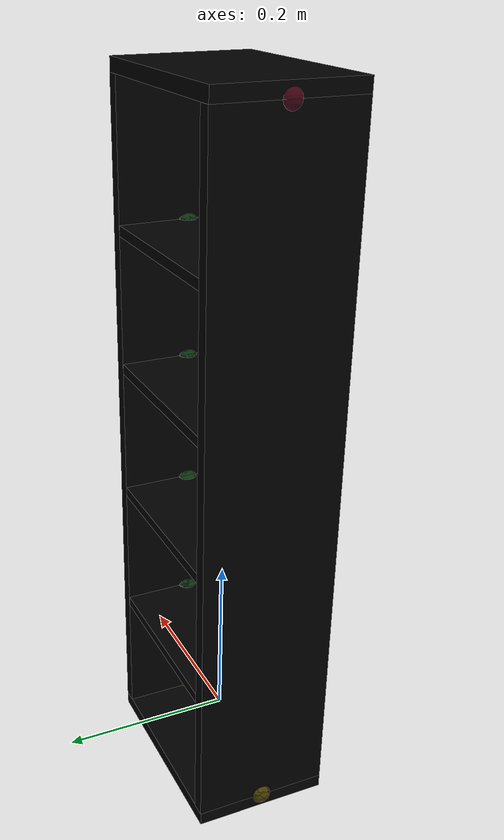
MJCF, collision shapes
<mujoco model="bookcase_expedit_0385">
  <custom>
    <numeric data="0.610909 0.185574 0.007996 0.0 -0.701463 0.712706 0.0" name="0_part0_initpos" />
    <numeric data="0.058502 0.312085 0.007896 0.707107 -1e-06 0.707107 1e-06" name="7_part7_initpos" />
    <numeric data="0.048989 0.082944 0.008098 0.000233 -0.707107 -0.000233 -0.707107" name="6_part6_initpos" />
    <numeric data="-0.494272 0.204526 0.008098 0.707633 0.0 -0.0 0.70658" name="5_part5_initpos" />
    <numeric data="-0.067446 -0.13918 0.006066 0.999964 -0.0 -0.0 -0.008531" name="4_part4_initpos" />
    <numeric data="0.484878 -0.138269 0.006169 0.999106 0.0 -0.0 0.042283" name="3_part3_initpos" />
    <numeric data="-0.336847 -0.116742 0.006066 0.99999 -0.0 -0.0 -0.004365" name="2_part2_initpos" />
    <numeric data="0.222327 -0.12981 0.006066 0.999952 0.0 0.0 -0.009838" name="1_part1_initpos" />
  </custom>
  <asset>
    <mesh file="bookcase_expedit_0385/0.stl" name="part0" scale="0.00064 0.00064 0.00064" />
    <mesh file="bookcase_expedit_0385/7.stl" name="part7" scale="0.00064 0.00064 0.00064" />
    <mesh file="bookcase_expedit_0385/6.stl" name="part6" scale="0.00064 0.00064 0.00064" />
    <mesh file="bookcase_expedit_0385/5.stl" name="part5" scale="0.00064 0.00064 0.00064" />
    <mesh file="bookcase_expedit_0385/4.stl" name="part4" scale="0.00064 0.00064 0.00064" />
    <mesh file="bookcase_expedit_0385/3.stl" name="part3" scale="0.00064 0.00064 0.00064" />
    <mesh file="bookcase_expedit_0385/2.stl" name="part2" scale="0.00064 0.00064 0.00064" />
    <mesh file="bookcase_expedit_0385/1.stl" name="part1" scale="0.00064 0.00064 0.00064" />
  </asset>
  <equality>
    <weld active="false" body1="0_part0" body2="6_part6" solimp="1 1 0.5" solref="0.01 0.3" />
    <weld active="false" body1="0_part0" body2="7_part7" solimp="1 1 0.5" solref="0.01 0.3" />
    <weld active="false" body1="6_part6" body2="5_part5" solimp="1 1 0.5" solref="0.01 0.3" />
    <weld active="false" body1="7_part7" body2="5_part5" solimp="1 1 0.5" solref="0.01 0.3" />
    <weld active="false" body1="6_part6" body2="1_part1" solimp="1 1 0.5" solref="0.01 0.3" />
    <weld active="false" body1="6_part6" body2="2_part2" solimp="1 1 0.5" solref="0.01 0.3" />
    <weld active="false" body1="6_part6" body2="3_part3" solimp="1 1 0.5" solref="0.01 0.3" />
    <weld active="false" body1="6_part6" body2="4_part4" solimp="1 1 0.5" solref="0.01 0.3" />
    <weld active="false" body1="7_part7" body2="1_part1" solimp="1 1 0.5" solref="0.01 0.3" />
    <weld active="false" body1="7_part7" body2="2_part2" solimp="1 1 0.5" solref="0.01 0.3" />
    <weld active="false" body1="7_part7" body2="3_part3" solimp="1 1 0.5" solref="0.01 0.3" />
    <weld active="false" body1="7_part7" body2="4_part4" solimp="1 1 0.5" solref="0.01 0.3" />
  </equality>
  <worldbody>
    <body name="0_part0" pos="0.0 -1.1520000000000002e-09 0.768000000064" quat="1 0 0 0">
      <geom conaffinity="0" contype="0" density="0" mesh="part0" name="0_part0_mesh" pos="0.0 0.0 0.0" rgba="0.82 0.71 0.55 1" type="mesh" />
      <site name="0_part0_horizontal_radius_site" pos="0.0 -1.1520000000000002e-09 6.400000000000001e-11" quat="1 0 0 0" rgba="0 0 0 0" size="0.0128" />
      <site name="0_part0_top_site" pos="0.0 -1.1520000000000002e-09 0.008128015744000001" quat="1 0 0 0" rgba="0 0 0 0" size="0.0128" />
      <site name="0_part0_bottom_site" pos="0.0 -1.1520000000000002e-09 -0.008128015616000002" quat="1 0 0 0" rgba="0 0 0 0" size="0.0128" />
      <site name="0_part0_corner_site8" pos="-0.12192000000000001 0.08128000256000001 0.008128015744000001" quat="1 0 0 0" rgba="0 0 0 0" size="0.0128" />
      <site name="0_part0_corner_site7" pos="0.12192000000000001 0.08128000256000001 0.008128015744000001" quat="1 0 0 0" rgba="0 0 0 0" size="0.0128" />
      <site name="0_part0_corner_site6" pos="0.12192000000000001 -0.08128000486400003 0.008128015744000001" quat="1 0 0 0" rgba="0 0 0 0" size="0.0128" />
      <site name="0_part0_corner_site5" pos="-0.12192000000000001 -0.08128000486400003 0.008128015744000001" quat="1 0 0 0" rgba="0 0 0 0" size="0.0128" />
      <site name="0_part0_corner_site4" pos="-0.12192000000000001 0.08128000256000001 -0.008128015616000002" quat="1 0 0 0" rgba="0 0 0 0" size="0.0128" />
      <site name="0_part0_corner_site3" pos="0.12192000000000001 0.08128000256000001 -0.008128015616000002" quat="1 0 0 0" rgba="0 0 0 0" size="0.0128" />
      <site name="0_part0_corner_site2" pos="0.12192000000000001 -0.08128000486400003 -0.008128015616000002" quat="1 0 0 0" rgba="0 0 0 0" size="0.0128" />
      <site name="0_part0_corner_site1" pos="-0.12192000000000001 -0.08128000486400003 -0.008128015616000002" quat="1 0 0 0" rgba="0 0 0 0" size="0.0128" />
      <site name="toppane-sidepane,0,180,conn_site2" pos="0.11552000000000001 0.0 -0.0081280128" quat="1 0 0 0" rgba="0.9019 0.0980 0.2941 0.3" size="0.0128" />
      <site name="toppane-sidepane,0,180,conn_site1" pos="-0.11443200000000003 0.0 -0.0081280128" quat="1 0 0 0" rgba="0.9019 0.0980 0.2941 0.3" size="0.0128" />
      <geom density="50" name="noviz_collision_0_part0_0" pos="0.0 6.400000000000001e-09 -5.072000000000001e-05" quat="1 0 0 0" rgba="0 0 0 0" size="0.12192000000000001 0.08128000000000002 0.008077292800000002" solref="0.001 1" type="box" />
    </body>
    <body name="7_part7" pos="0.11379199955200002 -1.1520000000000002e-09 0.35347198822400006" quat="1 0 0 0">
      <geom conaffinity="0" contype="0" density="0" mesh="part7" name="7_part7_mesh" pos="0.0 0.0 0.0" rgba="0.82 0.71 0.55 1" type="mesh" />
      <site name="7_part7_horizontal_radius_site" pos="-6.400000000000001e-11 -1.1520000000000002e-09 -3.84e-09" quat="1 0 0 0" rgba="0 0 0 0" size="0.0128" />
      <site name="7_part7_top_site" pos="-6.400000000000001e-11 -1.1520000000000002e-09 0.40640000000000004" quat="1 0 0 0" rgba="0 0 0 0" size="0.0128" />
      <site name="7_part7_bottom_site" pos="-6.400000000000001e-11 -1.1520000000000002e-09 -0.40640000768000006" quat="1 0 0 0" rgba="0 0 0 0" size="0.0128" />
      <site name="7_part7_corner_site8" pos="-0.008128000512 0.08128000256000001 0.40640000000000004" quat="1 0 0 0" rgba="0 0 0 0" size="0.0128" />
      <site name="7_part7_corner_site7" pos="0.00812800032 0.08128000256000001 0.40640000000000004" quat="1 0 0 0" rgba="0 0 0 0" size="0.0128" />
      <site name="7_part7_corner_site6" pos="0.00812800032 -0.08128000486400003 0.40640000000000004" quat="1 0 0 0" rgba="0 0 0 0" size="0.0128" />
      <site name="7_part7_corner_site5" pos="-0.008128000512 -0.08128000486400003 0.40640000000000004" quat="1 0 0 0" rgba="0 0 0 0" size="0.0128" />
      <site name="7_part7_corner_site4" pos="-0.008128000512 0.08128000256000001 -0.40640000768000006" quat="1 0 0 0" rgba="0 0 0 0" size="0.0128" />
      <site name="7_part7_corner_site3" pos="0.00812800032 0.08128000256000001 -0.40640000768000006" quat="1 0 0 0" rgba="0 0 0 0" size="0.0128" />
      <site name="7_part7_corner_site2" pos="0.00812800032 -0.08128000486400003 -0.40640000768000006" quat="1 0 0 0" rgba="0 0 0 0" size="0.0128" />
      <site name="7_part7_corner_site1" pos="-0.008128000512 -0.08128000486400003 -0.40640000768000006" quat="1 0 0 0" rgba="0 0 0 0" size="0.0128" />
      <site name="sidepane-horpane,0,180,conn_site8" pos="-0.007552000000000002 0.0 0.24300800000000003" quat="0.7071067 0 0.7071068 0" rgba="0.2352 0.7058 0.2941 0.3" size="0.0128" />
      <site name="sidepane-horpane,0,180,conn_site7" pos="-0.008192000000000001 0.0 0.08108800000000001" quat="0.7071067 0 0.7071068 0" rgba="0.2352 0.7058 0.2941 0.3" size="0.0128" />
      <site name="sidepane-horpane,0,180,conn_site6" pos="-0.008192000000000001 0.0 -0.08083200000000001" quat="0.7071067 0 0.7071068 0" rgba="0.2352 0.7058 0.2941 0.3" size="0.0128" />
      <site name="sidepane-horpane,0,180,conn_site5" pos="-0.007552000000000002 0.0 -0.24339200000000005" quat="0.7071067 0 0.7071068 0" rgba="0.2352 0.7058 0.2941 0.3" size="0.0128" />
      <site name="sidepane-botpane,0,180,conn_site2" pos="0.0015359936 0.0 -0.406400064" quat="0 1 0 0" rgba="1.0 0.8823 0.0980 0.3" size="0.0128" />
      <site name="sidepane-toppane,0,180,conn_site2" pos="0.0017280000000000002 0.0 0.40640000000000004" quat="1 0 0 0" rgba="0.9019 0.0980 0.2941 0.3" size="0.0128" />
      <geom density="50" name="noviz_collision_7_part7_0" pos="-0.00010078080000000001 0.00021462400000000004 0.0" quat="1 0 0 0" rgba="0 0 0 0" size="0.008027219200000001 0.08149465600000001 0.406400064" solref="0.001 1" type="box" />
    </body>
    <body name="6_part6" pos="-0.11379199942400003 -1.1520000000000002e-09 0.35347198822400006" quat="1 0 0 0">
      <geom conaffinity="0" contype="0" density="0" mesh="part6" name="6_part6_mesh" pos="0.0 0.0 0.0" rgba="0.82 0.71 0.55 1" type="mesh" />
      <site name="6_part6_horizontal_radius_site" pos="-6.400000000000001e-11 -1.1520000000000002e-09 -3.84e-09" quat="1 0 0 0" rgba="0 0 0 0" size="0.0128" />
      <site name="6_part6_top_site" pos="-6.400000000000001e-11 -1.1520000000000002e-09 0.40640000000000004" quat="1 0 0 0" rgba="0 0 0 0" size="0.0128" />
      <site name="6_part6_bottom_site" pos="-6.400000000000001e-11 -1.1520000000000002e-09 -0.40640000768000006" quat="1 0 0 0" rgba="0 0 0 0" size="0.0128" />
      <site name="6_part6_corner_site8" pos="-0.00812800064 0.08128000256000001 0.40640000000000004" quat="1 0 0 0" rgba="0 0 0 0" size="0.0128" />
      <site name="6_part6_corner_site7" pos="0.008128000512 0.08128000256000001 0.40640000000000004" quat="1 0 0 0" rgba="0 0 0 0" size="0.0128" />
      <site name="6_part6_corner_site6" pos="0.008128000512 -0.08128000486400003 0.40640000000000004" quat="1 0 0 0" rgba="0 0 0 0" size="0.0128" />
      <site name="6_part6_corner_site5" pos="-0.00812800064 -0.08128000486400003 0.40640000000000004" quat="1 0 0 0" rgba="0 0 0 0" size="0.0128" />
      <site name="6_part6_corner_site4" pos="-0.00812800064 0.08128000256000001 -0.40640000768000006" quat="1 0 0 0" rgba="0 0 0 0" size="0.0128" />
      <site name="6_part6_corner_site3" pos="0.008128000512 0.08128000256000001 -0.40640000768000006" quat="1 0 0 0" rgba="0 0 0 0" size="0.0128" />
      <site name="6_part6_corner_site2" pos="0.008128000512 -0.08128000486400003 -0.40640000768000006" quat="1 0 0 0" rgba="0 0 0 0" size="0.0128" />
      <site name="6_part6_corner_site1" pos="-0.00812800064 -0.08128000486400003 -0.40640000768000006" quat="1 0 0 0" rgba="0 0 0 0" size="0.0128" />
      <site name="sidepane-horpane,0,180,conn_site4" pos="0.008832000000000001 0.0 0.243648" quat="0.7071067 0 -0.7071068 0" rgba="0.2352 0.7058 0.2941 0.3" size="0.0128" />
      <site name="sidepane-horpane,0,180,conn_site3" pos="0.008192000000000001 0.0 0.07852800000000001" quat="0.7071067 0 -0.7071068 0" rgba="0.2352 0.7058 0.2941 0.3" size="0.0128" />
      <site name="sidepane-horpane,0,180,conn_site2" pos="0.008192000000000001 0.0 -0.08275200000000003" quat="0.7071067 0 -0.7071068 0" rgba="0.2352 0.7058 0.2941 0.3" size="0.0128" />
      <site name="sidepane-horpane,0,180,conn_site1" pos="0.007552000000000002 0.0 -0.24467200000000006" quat="0.7071067 0 -0.7071068 0" rgba="0.2352 0.7058 0.2941 0.3" size="0.0128" />
      <site name="sidepane-botpane,0,180,conn_site1" pos="-0.0028159936000000003 0.0 -0.406400064" quat="0 1 0 0" rgba="1.0 0.8823 0.0980 0.3" size="0.0128" />
      <site name="sidepane-toppane,0,180,conn_site1" pos="-0.00064 0.0 0.40640000000000004" quat="1 0 0 0" rgba="0.9019 0.0980 0.2941 0.3" size="0.0128" />
      <geom density="50" name="noviz_collision_6_part6_0" pos="0.00010078080000000001 0.00021462400000000004 0.0" quat="1 0 0 0" rgba="0 0 0 0" size="0.0082287808 0.08149465600000001 0.406400064" solref="0.001 1" type="box" />
    </body>
    <body name="5_part5" pos="0.0 -1.1520000000000002e-09 -0.06105601561599994" quat="1 0 0 0">
      <geom conaffinity="0" contype="0" density="0" mesh="part5" name="5_part5_mesh" pos="0.0 0.0 0.0" rgba="0.82 0.71 0.55 1" type="mesh" />
      <site name="5_part5_horizontal_radius_site" pos="0.0 -1.1520000000000002e-09 0.0" quat="1 0 0 0" rgba="0 0 0 0" size="0.0128" />
      <site name="5_part5_top_site" pos="0.0 -1.1520000000000002e-09 0.008128000000000002" quat="1 0 0 0" rgba="0 0 0 0" size="0.0128" />
      <site name="5_part5_bottom_site" pos="0.0 -1.1520000000000002e-09 -0.008128000000000002" quat="1 0 0 0" rgba="0 0 0 0" size="0.0128" />
      <site name="5_part5_corner_site8" pos="-0.12192000000000001 0.08128000256000001 0.008128000000000002" quat="1 0 0 0" rgba="0 0 0 0" size="0.0128" />
      <site name="5_part5_corner_site7" pos="0.12192000000000001 0.08128000256000001 0.008128000000000002" quat="1 0 0 0" rgba="0 0 0 0" size="0.0128" />
      <site name="5_part5_corner_site6" pos="0.12192000000000001 -0.08128000486400003 0.008128000000000002" quat="1 0 0 0" rgba="0 0 0 0" size="0.0128" />
      <site name="5_part5_corner_site5" pos="-0.12192000000000001 -0.08128000486400003 0.008128000000000002" quat="1 0 0 0" rgba="0 0 0 0" size="0.0128" />
      <site name="5_part5_corner_site4" pos="-0.12192000000000001 0.08128000256000001 -0.008128000000000002" quat="1 0 0 0" rgba="0 0 0 0" size="0.0128" />
      <site name="5_part5_corner_site3" pos="0.12192000000000001 0.08128000256000001 -0.008128000000000002" quat="1 0 0 0" rgba="0 0 0 0" size="0.0128" />
      <site name="5_part5_corner_site2" pos="0.12192000000000001 -0.08128000486400003 -0.008128000000000002" quat="1 0 0 0" rgba="0 0 0 0" size="0.0128" />
      <site name="5_part5_corner_site1" pos="-0.12192000000000001 -0.08128000486400003 -0.008128000000000002" quat="1 0 0 0" rgba="0 0 0 0" size="0.0128" />
      <site name="botpane-sidepane,0,180,conn_site2" pos="0.11532800000000001 0.0 0.008127968000000001" quat="0 1 0 0" rgba="1.0 0.8823 0.0980 0.3" size="0.0128" />
      <site name="botpane-sidepane,0,180,conn_site1" pos="-0.116608 0.0 0.008127968000000001" quat="0 1 0 0" rgba="1.0 0.8823 0.0980 0.3" size="0.0128" />
      <geom density="50" name="noviz_collision_5_part5_0" pos="0.0 6.400000000000001e-09 5.0700800000000014e-05" quat="1 0 0 0" rgba="0 0 0 0" size="0.12192000000000001 0.08128000000000002 0.008178668800000002" solref="0.001 1" type="box" />
    </body>
    <body name="4_part4" pos="1.984e-09 -1.1520000000000002e-09 0.10963198438399989" quat="1 0 0 0">
      <geom conaffinity="0" contype="0" density="0" mesh="part4" name="4_part4_mesh" pos="0.0 0.0 0.0" rgba="0.82 0.71 0.55 1" type="mesh" />
      <site name="4_part4_horizontal_radius_site" pos="1.984e-09 -1.1520000000000002e-09 0.0" quat="1 0 0 0" rgba="0 0 0 0" size="0.0128" />
      <site name="4_part4_top_site" pos="1.984e-09 -1.1520000000000002e-09 0.006096000000000001" quat="1 0 0 0" rgba="0 0 0 0" size="0.0128" />
      <site name="4_part4_bottom_site" pos="1.984e-09 -1.1520000000000002e-09 -0.006096000000000001" quat="1 0 0 0" rgba="0 0 0 0" size="0.0128" />
      <site name="4_part4_corner_site8" pos="-0.10566400000000001 0.08128000256000001 0.006096000000000001" quat="1 0 0 0" rgba="0 0 0 0" size="0.0128" />
      <site name="4_part4_corner_site7" pos="0.10566400390400002 0.08128000256000001 0.006096000000000001" quat="1 0 0 0" rgba="0 0 0 0" size="0.0128" />
      <site name="4_part4_corner_site6" pos="0.10566400390400002 -0.08128000486400003 0.006096000000000001" quat="1 0 0 0" rgba="0 0 0 0" size="0.0128" />
      <site name="4_part4_corner_site5" pos="-0.10566400000000001 -0.08128000486400003 0.006096000000000001" quat="1 0 0 0" rgba="0 0 0 0" size="0.0128" />
      <site name="4_part4_corner_site4" pos="-0.10566400000000001 0.08128000256000001 -0.006096000000000001" quat="1 0 0 0" rgba="0 0 0 0" size="0.0128" />
      <site name="4_part4_corner_site3" pos="0.10566400390400002 0.08128000256000001 -0.006096000000000001" quat="1 0 0 0" rgba="0 0 0 0" size="0.0128" />
      <site name="4_part4_corner_site2" pos="0.10566400390400002 -0.08128000486400003 -0.006096000000000001" quat="1 0 0 0" rgba="0 0 0 0" size="0.0128" />
      <site name="4_part4_corner_site1" pos="-0.10566400000000001 -0.08128000486400003 -0.006096000000000001" quat="1 0 0 0" rgba="0 0 0 0" size="0.0128" />
      <site name="horpane-sidepane,0,180,conn_site5" pos="0.10624 0.0 0.0004480448000000001" quat="0.7071067 0 0.7071068 0" rgba="0.2352 0.7058 0.2941 0.3" size="0.0128" />
      <site name="horpane-sidepane,0,180,conn_site1" pos="-0.10624 0.0 -0.0008319552000000002" quat="0.7071067 0 -0.7071068 0" rgba="0.2352 0.7058 0.2941 0.3" size="0.0128" />
      <geom density="50" name="noviz_collision_4_part4_0" pos="0.0 6.400000000000001e-09 0.0" quat="1 0 0 0" rgba="0 0 0 0" size="0.10566400000000001 0.08128000000000002 0.0060959360000000015" solref="0.001 1" type="box" />
    </body>
    <body name="3_part3" pos="1.984e-09 -1.1520000000000002e-09 0.27219198438400005" quat="1 0 0 0">
      <geom conaffinity="0" contype="0" density="0" mesh="part3" name="3_part3_mesh" pos="0.0 0.0 0.0" rgba="0.82 0.71 0.55 1" type="mesh" />
      <site name="3_part3_horizontal_radius_site" pos="1.984e-09 -1.1520000000000002e-09 0.0" quat="1 0 0 0" rgba="0 0 0 0" size="0.0128" />
      <site name="3_part3_top_site" pos="1.984e-09 -1.1520000000000002e-09 0.006096000000000001" quat="1 0 0 0" rgba="0 0 0 0" size="0.0128" />
      <site name="3_part3_bottom_site" pos="1.984e-09 -1.1520000000000002e-09 -0.006096000000000001" quat="1 0 0 0" rgba="0 0 0 0" size="0.0128" />
      <site name="3_part3_corner_site8" pos="-0.10566400000000001 0.08128000256000001 0.006096000000000001" quat="1 0 0 0" rgba="0 0 0 0" size="0.0128" />
      <site name="3_part3_corner_site7" pos="0.10566400390400002 0.08128000256000001 0.006096000000000001" quat="1 0 0 0" rgba="0 0 0 0" size="0.0128" />
      <site name="3_part3_corner_site6" pos="0.10566400390400002 -0.08128000486400003 0.006096000000000001" quat="1 0 0 0" rgba="0 0 0 0" size="0.0128" />
      <site name="3_part3_corner_site5" pos="-0.10566400000000001 -0.08128000486400003 0.006096000000000001" quat="1 0 0 0" rgba="0 0 0 0" size="0.0128" />
      <site name="3_part3_corner_site4" pos="-0.10566400000000001 0.08128000256000001 -0.006096000000000001" quat="1 0 0 0" rgba="0 0 0 0" size="0.0128" />
      <site name="3_part3_corner_site3" pos="0.10566400390400002 0.08128000256000001 -0.006096000000000001" quat="1 0 0 0" rgba="0 0 0 0" size="0.0128" />
      <site name="3_part3_corner_site2" pos="0.10566400390400002 -0.08128000486400003 -0.006096000000000001" quat="1 0 0 0" rgba="0 0 0 0" size="0.0128" />
      <site name="3_part3_corner_site1" pos="-0.10566400000000001 -0.08128000486400003 -0.006096000000000001" quat="1 0 0 0" rgba="0 0 0 0" size="0.0128" />
      <site name="horpane-sidepane,0,180,conn_site6" pos="0.10560000000000001 0.0 0.00044800640000000006" quat="0.7071067 0 0.7071068 0" rgba="0.2352 0.7058 0.2941 0.3" size="0.0128" />
      <site name="horpane-sidepane,0,180,conn_site2" pos="-0.10560000000000001 0.0 -0.0014719936000000004" quat="0.7071067 0 -0.7071068 0" rgba="0.2352 0.7058 0.2941 0.3" size="0.0128" />
      <geom density="50" name="noviz_collision_3_part3_0" pos="0.0 6.400000000000001e-09 0.0" quat="1 0 0 0" rgba="0 0 0 0" size="0.10566400000000001 0.08128000000000002 0.006096012800000001" solref="0.001 1" type="box" />
    </body>
    <body name="2_part2" pos="1.984e-09 -1.1520000000000002e-09 0.434751984384" quat="1 0 0 0">
      <geom conaffinity="0" contype="0" density="0" mesh="part2" name="2_part2_mesh" pos="0.0 0.0 0.0" rgba="0.82 0.71 0.55 1" type="mesh" />
      <site name="2_part2_horizontal_radius_site" pos="1.984e-09 -1.1520000000000002e-09 0.0" quat="1 0 0 0" rgba="0 0 0 0" size="0.0128" />
      <site name="2_part2_top_site" pos="1.984e-09 -1.1520000000000002e-09 0.006096000000000001" quat="1 0 0 0" rgba="0 0 0 0" size="0.0128" />
      <site name="2_part2_bottom_site" pos="1.984e-09 -1.1520000000000002e-09 -0.006096000000000001" quat="1 0 0 0" rgba="0 0 0 0" size="0.0128" />
      <site name="2_part2_corner_site8" pos="-0.10566400000000001 0.08128000256000001 0.006096000000000001" quat="1 0 0 0" rgba="0 0 0 0" size="0.0128" />
      <site name="2_part2_corner_site7" pos="0.10566400390400002 0.08128000256000001 0.006096000000000001" quat="1 0 0 0" rgba="0 0 0 0" size="0.0128" />
      <site name="2_part2_corner_site6" pos="0.10566400390400002 -0.08128000486400003 0.006096000000000001" quat="1 0 0 0" rgba="0 0 0 0" size="0.0128" />
      <site name="2_part2_corner_site5" pos="-0.10566400000000001 -0.08128000486400003 0.006096000000000001" quat="1 0 0 0" rgba="0 0 0 0" size="0.0128" />
      <site name="2_part2_corner_site4" pos="-0.10566400000000001 0.08128000256000001 -0.006096000000000001" quat="1 0 0 0" rgba="0 0 0 0" size="0.0128" />
      <site name="2_part2_corner_site3" pos="0.10566400390400002 0.08128000256000001 -0.006096000000000001" quat="1 0 0 0" rgba="0 0 0 0" size="0.0128" />
      <site name="2_part2_corner_site2" pos="0.10566400390400002 -0.08128000486400003 -0.006096000000000001" quat="1 0 0 0" rgba="0 0 0 0" size="0.0128" />
      <site name="2_part2_corner_site1" pos="-0.10566400000000001 -0.08128000486400003 -0.006096000000000001" quat="1 0 0 0" rgba="0 0 0 0" size="0.0128" />
      <site name="horpane-sidepane,0,180,conn_site7" pos="0.10560000000000001 0.0 -0.0001919936" quat="0.7071067 0 0.7071068 0" rgba="0.2352 0.7058 0.2941 0.3" size="0.0128" />
      <site name="horpane-sidepane,0,180,conn_site3" pos="-0.10560000000000001 0.0 -0.0027519936000000005" quat="0.7071067 0 -0.7071068 0" rgba="0.2352 0.7058 0.2941 0.3" size="0.0128" />
      <geom density="50" name="noviz_collision_2_part2_0" pos="0.0 6.400000000000001e-09 0.0" quat="1 0 0 0" rgba="0 0 0 0" size="0.10566400000000001 0.08128000000000002 0.006096012800000001" solref="0.001 1" type="box" />
    </body>
    <body name="1_part1" pos="1.984e-09 -1.1520000000000002e-09 0.5973120000000001" quat="1 0 0 0">
      <geom conaffinity="0" contype="0" density="0" mesh="part1" name="1_part1_mesh" pos="0.0 0.0 0.0" rgba="0.82 0.71 0.55 1" type="mesh" />
      <site name="1_part1_horizontal_radius_site" pos="1.984e-09 -1.1520000000000002e-09 0.0" quat="1 0 0 0" rgba="0 0 0 0" size="0.0128" />
      <site name="1_part1_top_site" pos="1.984e-09 -1.1520000000000002e-09 0.006096015616000001" quat="1 0 0 0" rgba="0 0 0 0" size="0.0128" />
      <site name="1_part1_bottom_site" pos="1.984e-09 -1.1520000000000002e-09 -0.006096015616000001" quat="1 0 0 0" rgba="0 0 0 0" size="0.0128" />
      <site name="1_part1_corner_site8" pos="-0.10566400000000001 0.08128000256000001 0.006096015616000001" quat="1 0 0 0" rgba="0 0 0 0" size="0.0128" />
      <site name="1_part1_corner_site7" pos="0.10566400390400002 0.08128000256000001 0.006096015616000001" quat="1 0 0 0" rgba="0 0 0 0" size="0.0128" />
      <site name="1_part1_corner_site6" pos="0.10566400390400002 -0.08128000486400003 0.006096015616000001" quat="1 0 0 0" rgba="0 0 0 0" size="0.0128" />
      <site name="1_part1_corner_site5" pos="-0.10566400000000001 -0.08128000486400003 0.006096015616000001" quat="1 0 0 0" rgba="0 0 0 0" size="0.0128" />
      <site name="1_part1_corner_site4" pos="-0.10566400000000001 0.08128000256000001 -0.006096015616000001" quat="1 0 0 0" rgba="0 0 0 0" size="0.0128" />
      <site name="1_part1_corner_site3" pos="0.10566400390400002 0.08128000256000001 -0.006096015616000001" quat="1 0 0 0" rgba="0 0 0 0" size="0.0128" />
      <site name="1_part1_corner_site2" pos="0.10566400390400002 -0.08128000486400003 -0.006096015616000001" quat="1 0 0 0" rgba="0 0 0 0" size="0.0128" />
      <site name="1_part1_corner_site1" pos="-0.10566400000000001 -0.08128000486400003 -0.006096015616000001" quat="1 0 0 0" rgba="0 0 0 0" size="0.0128" />
      <site name="horpane-sidepane,0,180,conn_site8" pos="0.10624 0.0 -0.0008319936" quat="0.7071067 0 0.7071068 0" rgba="0.2352 0.7058 0.2941 0.3" size="0.0128" />
      <site name="horpane-sidepane,0,180,conn_site4" pos="-0.10496000000000001 0.0 -0.0001919936" quat="0.7071067 0 -0.7071068 0" rgba="0.2352 0.7058 0.2941 0.3" size="0.0128" />
      <geom density="50" name="noviz_collision_1_part1_0" pos="0.0 6.400000000000001e-09 0.0" quat="1 0 0 0" rgba="0 0 0 0" size="0.10566400000000001 0.08128000000000002 0.006096012800000001" solref="0.001 1" type="box" />
    </body>
  </worldbody>
  <actuator />
  <sensor />
  <contact />
  <default />
</mujoco>
